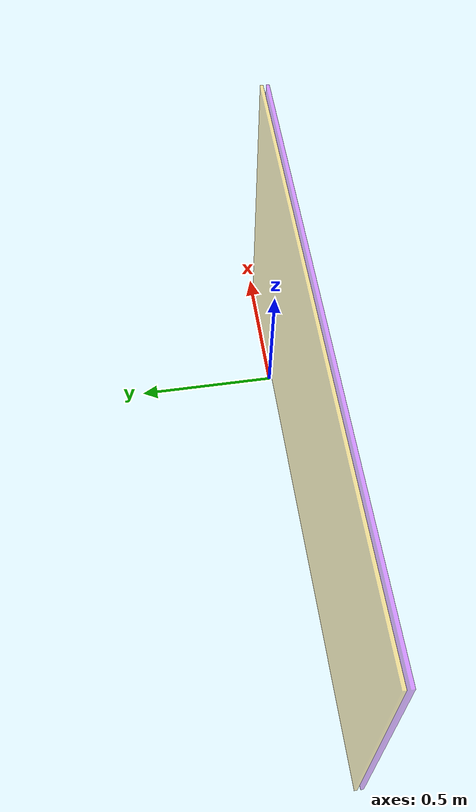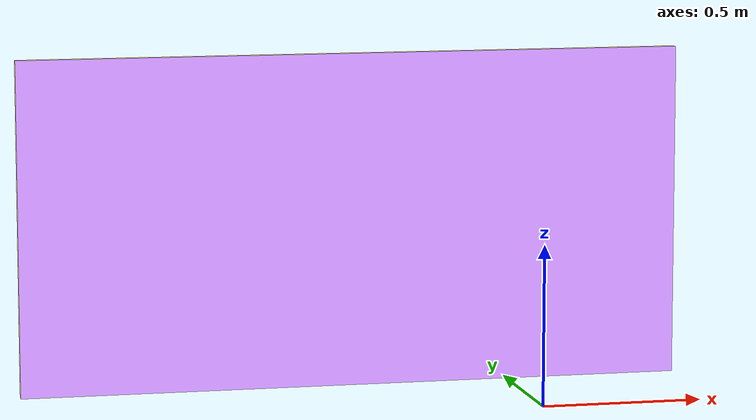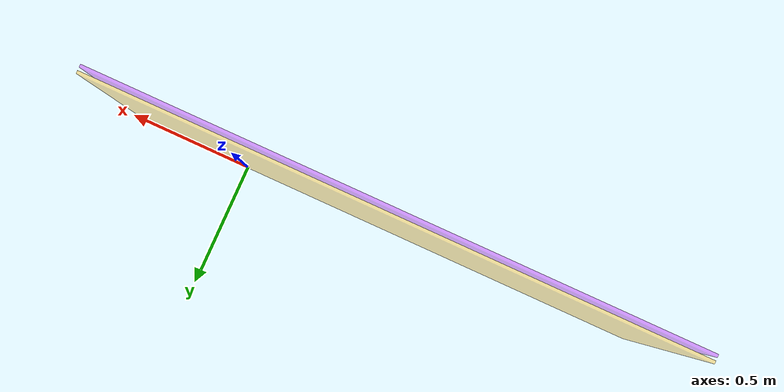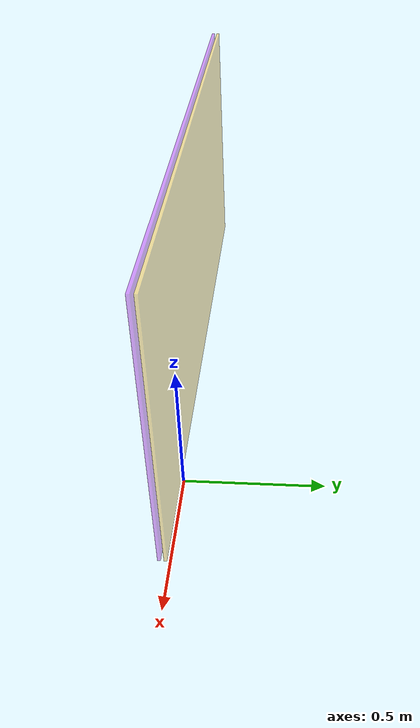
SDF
<sdf version="1.7"><model name="left_side"><static>true</static><link name="aoi_plane"><pose>-0.5999999875551677 -0.018122203922217105 0.6 0 0 3.1418</pose><visual name="front_face"><geometry><box><size>2.0 0.01 1.0</size></box></geometry><material><ambient>0.7 0.0 1.0 0.4</ambient><diffuse>0.7 0.0 1.0 0.4</diffuse></material></visual><visual name="back_face"><pose>0 -0.02 0 0 0 0</pose><geometry><box><size>2.0 0.01 1.0</size></box></geometry><material><ambient>1.0 0.7 0.0 0.4</ambient><diffuse>1.0 0.7 0.0 0.4</diffuse></material></visual></link></model></sdf>
